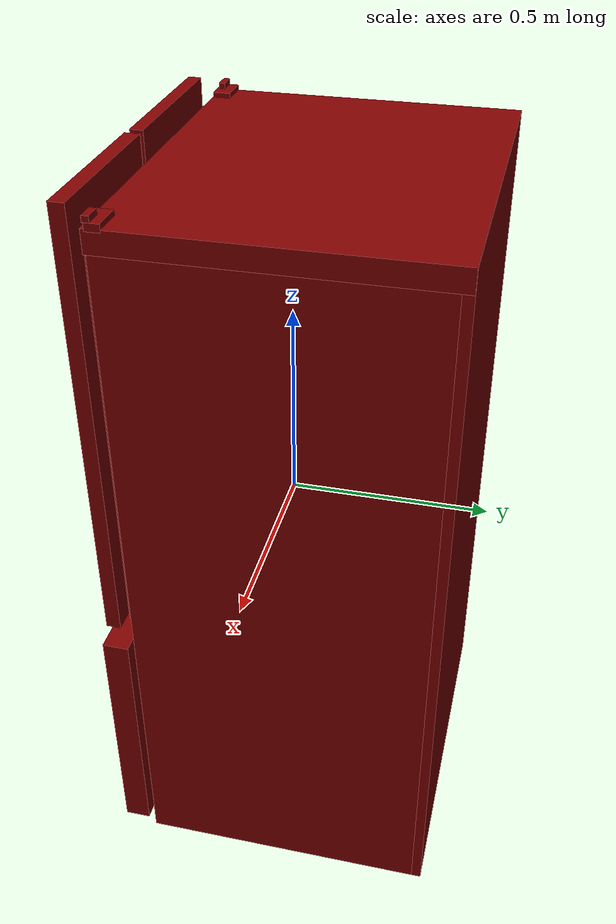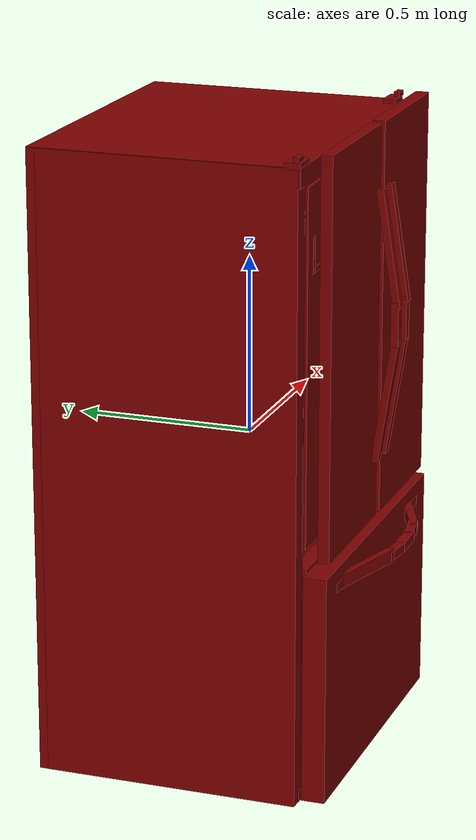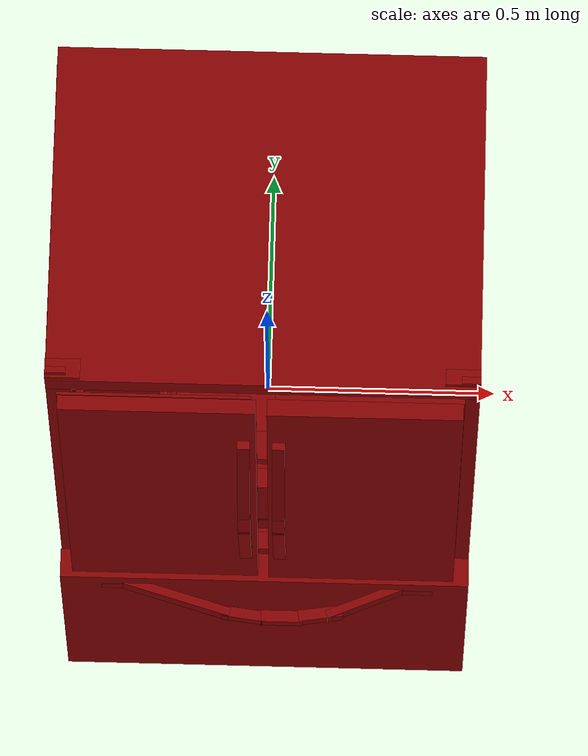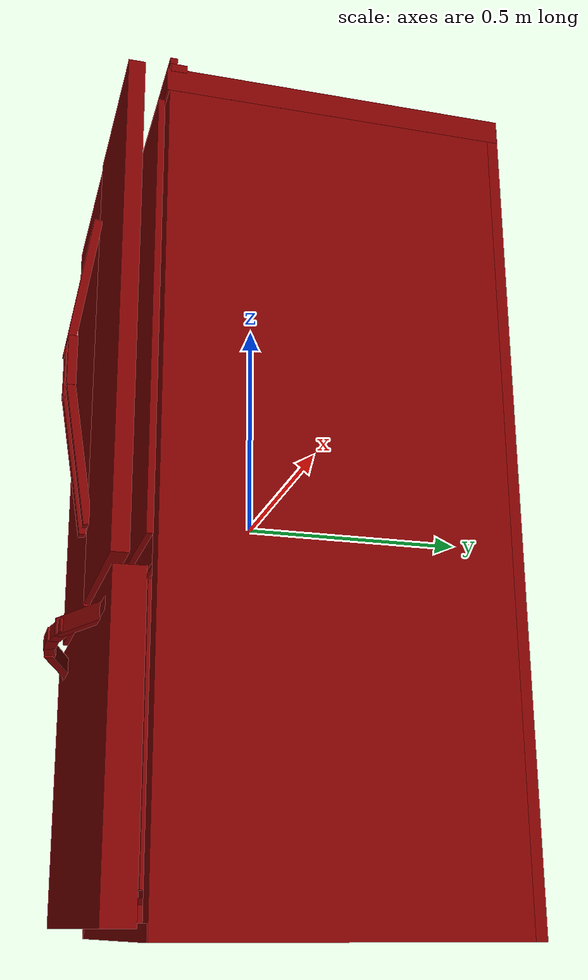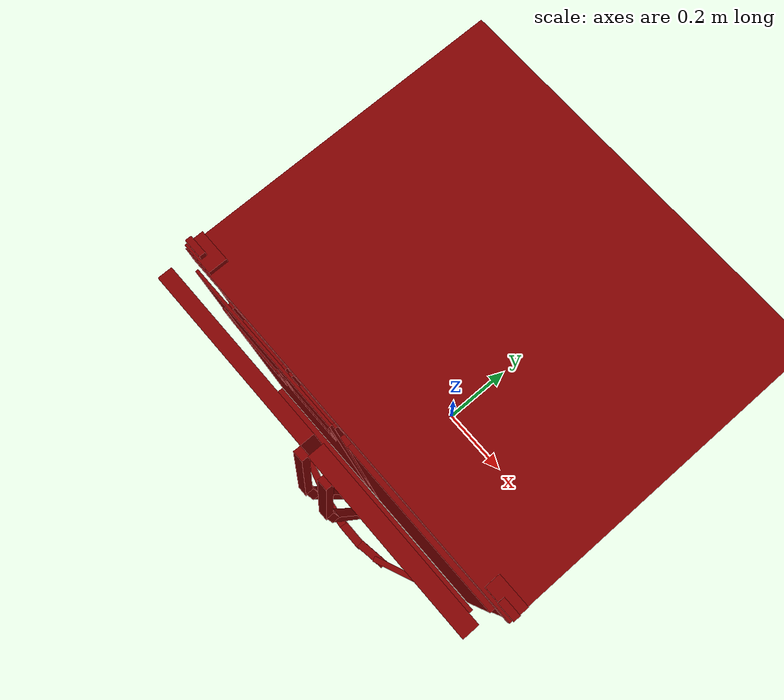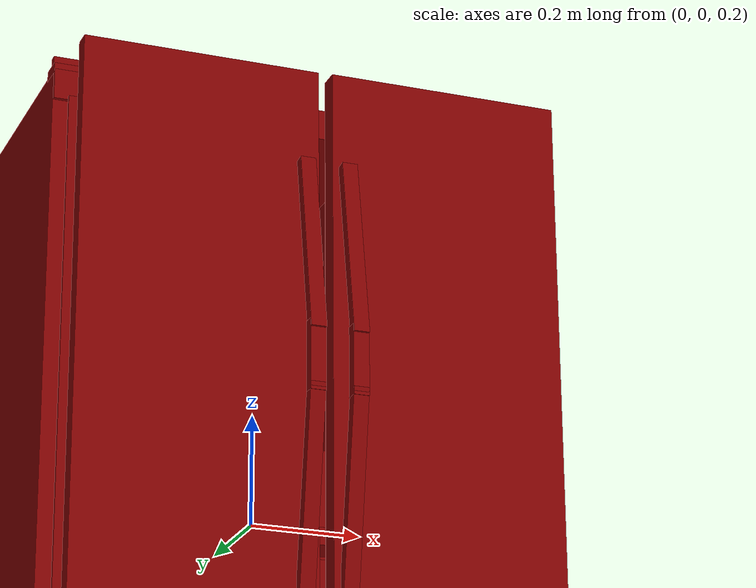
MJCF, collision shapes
<?xml version='1.0' encoding='UTF-8'?>
<mujoco model="model">
  <option timestep="0.005" gravity="0.0 0.0 -9.81"/>
  <compiler angle="radian"/>
  <asset>
    <mesh file="visuals/freezer0.obj" name="freezer0_vis"/>
    <mesh file="visuals/fridge_drawer0.obj" name="fridge_drawer0_vis"/>
    <mesh file="visuals/fridge_left_door.obj" name="fridge_left_door_vis"/>
    <mesh file="visuals/fridge_left_door_Clear.obj" name="fridge_left_door_Clear_vis"/>
    <mesh file="visuals/fridge_right_door.obj" name="fridge_right_door_vis"/>
    <mesh file="visuals/fridge_right_door_Clear.obj" name="fridge_right_door_Clear_vis"/>
    <mesh file="visuals/Body001.obj" name="Body001_vis"/>
    <mesh file="visuals/Body001_Clear.obj" name="Body001_Clear_vis"/>
    <texture file="visuals/T_BC001.png" name="Body001_material" type="2d"/>
    <material name="Body001_material" rgba="1 1 1 1.0" texture="Body001_material" shininess="0.665778249502182" specular="0.3103448502657381"/>
    <texture file="visuals/T_BC001.png" name="freezer0_material" type="2d"/>
    <material name="freezer0_material" rgba="1 1 1 1.0" texture="freezer0_material" shininess="0.665778249502182" specular="0.61"/>
    <texture file="visuals/T_BC001.png" name="fridge_drawer0_material" type="2d"/>
    <material name="fridge_drawer0_material" rgba="1 1 1 1.0" texture="fridge_drawer0_material" shininess="0.665778249502182" specular="0.3103448502657381"/>
    <texture file="visuals/T_BC001.png" name="fridge_left_door_material" type="2d"/>
    <material name="fridge_left_door_material" rgba="1 1 1 1.0" texture="fridge_left_door_material" shininess="0.665778249502182" specular="0.61"/>
    <texture file="visuals/T_BC001.png" name="fridge_left_door_Clear_material" type="2d"/>
    <material name="fridge_left_door_Clear_material" rgba="1 1 1 0.699999988079071" texture="fridge_left_door_Clear_material" shininess="0.2512328028678894" specular="0.3103448502657381"/>
    <texture file="visuals/T_BC001.png" name="fridge_right_door_material" type="2d"/>
    <material name="fridge_right_door_material" rgba="1 1 1 1.0" texture="fridge_right_door_material" shininess="0.665778249502182" specular="0.61"/>
    <texture file="visuals/T_BC001.png" name="fridge_right_door_Clear_material" type="2d"/>
    <material name="fridge_right_door_Clear_material" rgba="1 1 1 0.699999988079071" texture="fridge_right_door_Clear_material" shininess="0.2512328028678894" specular="0.3103448502657381"/>
    <texture file="visuals/T_BC001.png" name="Body001_Clear_material" type="2d"/>
    <material name="Body001_Clear_material" rgba="1 1 1 0.699999988079071" texture="Body001_Clear_material" shininess="0.2512328028678894" specular="0.3103448502657381"/>
  </asset>
  <default>
    <default class="visual">
      <geom conaffinity="0" contype="0" group="1" type="mesh"/>
    </default>
    <default class="collision">
      <geom group="0" rgba="0.5 0 0 0.5"/>
    </default>
    <default class="spawn">
      <geom group="0" rgba="1 1 1 0.5" contype="0" conaffinity="0"/>
      <site group="0" rgba="1 1 1 0.5"/>
    </default>
    <default class="region">
      <geom group="1" conaffinity="0" contype="0" rgba="0 1 0 0"/>
    </default>
  </default>
  <worldbody>
    <body>
      <body name="object">
        <geom mesh="Body001_vis" type="mesh" solimp="0.998 0.998 0.001" solref="0.001 1" friction="0.95 0.3 0.1" class="visual" material="Body001_material"/>
        <geom class="collision" type="box" pos="0.39397302 0.16072606 0.46881157" size="0.010351382195949554 0.16928532719612122 0.010351382195949554" quat="1.0 0.0 0.0 0.0"/>
        <geom class="collision" type="box" pos="-0.39762896 0.16072606 0.46881142" size="0.010351382195949554 0.1692841798067093 0.010351382195949554" quat="1.0 0.0 0.0 0.0"/>
        <geom class="collision" type="box" pos="0.38127807 0.03156779 -0.00229886" size="0.01822734624147415 0.2874940037727356 0.1552017778158188" quat="1.0 0.0 0.0 0.0"/>
        <geom class="collision" type="box" pos="-0.32927716 0.16072605 0.65921813" size="0.07471196353435516 0.16921715438365936 0.14438222348690033" quat="1.0 0.0 0.0 0.0"/>
        <geom class="collision" type="box" pos="-0.41882759 -0.27336265 0.86517310" size="0.03676821291446686 0.021106690168380737 0.009076273068785667" quat="1.0 0.0 0.0 0.0"/>
        <geom class="collision" type="box" pos="-0.43363792 -0.28183968 0.88106614" size="0.02151392586529255 0.006981874816119671 0.007224912289530039" quat="1.0 0.0 0.0 0.0"/>
        <geom class="collision" type="box" pos="0.41849810 -0.27167503 0.86517322" size="0.03709724172949791 0.017115572467446327 0.009076273068785667" quat="1.0 0.0 0.0 0.0"/>
        <geom class="collision" type="box" pos="0.43519518 -0.28326766 0.88106626" size="0.02039444074034691 0.007853726856410503 0.007224912289530039" quat="1.0 0.0 0.0 0.0"/>
        <geom class="collision" type="box" pos="-0.00171872 0.17113069 0.15645055" size="0.3947523236274719 0.17153818905353546 0.009492682293057442" quat="1.0 0.0 0.0 0.0"/>
        <geom class="collision" type="box" pos="0.01248583 0.06873922 -0.87896109" size="0.43579548597335815 0.36065641045570374 0.016081569716334343" quat="1.0 0.0 0.0 0.0"/>
        <geom class="collision" type="box" pos="0.00020603 0.07820539 0.83516902" size="0.4552483856678009 0.3750923275947571 0.026853106915950775" quat="1.0 0.0 0.0 0.0"/>
        <geom class="collision" type="box" pos="0.01248571 0.09118400 -0.19845474" size="0.43579548597335815 0.33821165561676025 0.04111609607934952" quat="1.0 0.0 0.0 0.0"/>
        <geom class="collision" type="box" pos="0.00014961 0.40447699 -0.01795267" size="0.4552538990974426 0.04916054382920265 0.8770899772644043" quat="1.0 0.0 0.0 0.0"/>
        <geom class="collision" type="box" pos="0.42626348 0.06924897 -0.01730360" size="0.029170408844947815 0.36014673113822937 0.8777389526367188" quat="1.0 0.0 0.0 0.0"/>
        <geom class="collision" type="box" pos="-0.42848656 0.06976548 -0.01730360" size="0.02709752880036831 0.35963016748428345 0.8777389526367188" quat="1.0 0.0 0.0 0.0"/>
        <geom class="collision" type="box" pos="-0.38581255 0.03156779 -0.00229886" size="0.01822734624147415 0.2875351309776306 0.1552017778158188" quat="1.0 0.0 0.0 0.0"/>
        <geom class="collision" type="box" pos="-0.00171872 0.14764889 0.48162958" size="0.3946937918663025 0.1949903815984726 0.0071469820104539394" quat="1.0 0.0 0.0 0.0"/>
        <body name="freezer0">
          <geom class="region" name="reg_freezer0" type="box" pos="0.0012735000000000107 0.04146426 -0.582328545" size="0.35728024999999997 0.29259588000000003 0.18970283500000001"/>
          <joint axis="0.0 -1.0 0.0" pos="0.00098822 -0.04495663 -0.54413748" limited="true" name="freezer0_door_joint" range="0.0 0.45" type="slide" damping="1" frictionloss="1" armature=".01" stiffness="0.05"/>
          <geom mesh="freezer0_vis" type="mesh" solimp="0.998 0.998 0.001" solref="0.001 1" friction="0.95 0.3 0.1" class="visual" material="freezer0_material"/>
          <geom class="collision" type="box" pos="-0.00152596 -0.27617277 -0.52103841" size="0.3885945677757263 0.019926954060792923 0.2845868766307831" quat="1.0 0.0 0.0 0.0"/>
          <geom class="collision" type="box" pos="0.00325092 0.34537049 -0.58550793" size="0.3782234489917755 0.0067798602394759655 0.1958441287279129" quat="1.0 0.0 0.0 0.0"/>
          <geom class="collision" type="box" pos="-0.36945698 0.02914997 -0.58227831" size="0.008334453217685223 0.3121313154697418 0.19447891414165497" quat="1.0 0.0 0.0 0.0"/>
          <geom class="collision" type="box" pos="0.37346104 0.02914997 -0.58334523" size="0.010277319699525833 0.31212928891181946 0.19342784583568573" quat="1.0 0.0 0.0 0.0"/>
          <geom class="collision" type="box" pos="0.00349362 -0.05604911 -0.79784882" size="0.37747225165367126 0.22831645607948303 0.02040756121277809" quat="1.0 0.0 0.0 0.0"/>
          <geom class="collision" type="box" pos="-0.04654500 -0.43680615 -0.28673491" size="0.04609515517950058 0.011889252811670303 0.013330944813787937" quat="0.9980104565620422 0.0 0.0 -0.0630485862493515" name="freezer0_door_handle_3"/>
          <geom class="collision" type="box" pos="0.23408982 -0.39697216 -0.28523165" size="0.10117261111736298 0.009400229901075363 0.018201885744929314" quat="0.9800581336021423 0.0 0.0 0.19871099293231964" name="freezer0_door_handle_5"/>
          <geom class="collision" type="box" pos="-0.20637545 -0.39748515 -0.28525394" size="0.13687340915203094 0.009747722186148167 0.018304292112588882" quat="0.9899300932884216 0.0 0.0 -0.1415572613477707" name="freezer0_door_handle_2"/>
          <geom class="collision" type="box" pos="0.00018750 -0.34199456 -0.55151129" size="0.45522984862327576 0.03260793909430504 0.32037287950515747" quat="1.0 0.0 0.0 0.0" name="freezer0_door_main"/>
          <geom class="collision" type="box" pos="0.04115998 -0.44110859 -0.28673491" size="0.04640457034111023 0.013151935301721096 0.013330944813787937" quat="1.0 0.0 0.0 0.0" name="freezer0_door_handle_main"/>
          <geom class="collision" type="box" pos="0.12665859 -0.43228305 -0.28673497" size="0.04938306659460068 0.012737303972244263 0.014281831681728363" quat="0.9971693754196167 0.0 0.0 0.07518839091062546" name="freezer0_door_handle_4"/>
          <geom class="collision" type="box" pos="0.32920635 -0.36250404 -0.28635326" size="0.046404555439949036 0.013151935301721096 0.013330944813787937" quat="1.0 0.0 0.0 0.0" name="freezer0_door_handle_6"/>
          <geom class="collision" type="box" pos="-0.31788349 -0.36250404 -0.28635326" size="0.04640458524227142 0.013151935301721096 0.013330944813787937" quat="1.0 0.0 0.0 0.0" name="freezer0_door_handle_1"/>
          <geom class="collision" type="box" pos="0.00425918 0.25823260 -0.78994113" size="0.3782905042171478 0.08598796278238297 0.01249912939965725" quat="1.0 0.0 0.0 0.0"/>
        </body>
        <body name="fridge_drawer0">
          <geom class="region" name="reg_fridge_drawer0" type="box" pos="-0.0014945700000000006 0.08286324499999999 -0.002895035000000004" size="0.31979841 0.225082155 0.13899294499999998"/>
          <joint axis="0.0 -1.0 0.0" pos="-0.00280036 0.04502129 -0.00803459" limited="true" name="fridge_drawer0_joint" range="0.0 0.45" type="slide" damping="1" frictionloss="1" armature=".01" stiffness="0.05"/>
          <geom mesh="fridge_drawer0_vis" type="mesh" solimp="0.998 0.998 0.001" solref="0.001 1" friction="0.95 0.3 0.1" class="visual" material="fridge_drawer0_material"/>
          <geom class="collision" type="box" pos="0.34030175 0.02856494 -0.00649109" size="0.017178663983941078 0.284542053937912 0.14763662219047546" quat="1.0 0.0 0.0 0.0"/>
          <geom class="collision" type="box" pos="-0.34390736 0.02856494 -0.00649652" size="0.017178663983941078 0.284542053937912 0.14764203131198883" quat="1.0 0.0 0.0 0.0"/>
          <geom class="collision" type="box" pos="-0.00268622 0.02856494 -0.15067451" size="0.3272773325443268 0.28454896807670593 0.0037048240192234516" quat="1.0 0.0 0.0 0.0"/>
          <geom class="collision" type="box" pos="-0.00268622 -0.23366980 -0.03811964" size="0.32728663086891174 0.022307263687253 0.1096319928765297" quat="1.0 0.0 0.0 0.0"/>
          <geom class="collision" type="box" pos="-0.00173840 0.32320004 -0.00815234" size="0.35775256156921387 0.010801659896969795 0.14659284055233002" quat="1.0 0.0 0.0 0.0"/>
          <geom class="collision" type="box" pos="-0.00305661 -0.18124206 0.12524165" size="0.33030828833580017 0.03307193145155907 0.015293127857148647" quat="1.0 0.0 0.0 0.0"/>
        </body>
        <body name="fridge_left_door">
          <joint axis="0.0 0.0 -1.0" pos="-0.41424084 -0.33445589 0.34853351" limited="true" name="fridge_left_door_joint" range="0.0 1.5707963267948966" type="hinge" damping="1" frictionloss="1" armature=".01" stiffness="0.05"/>
          <geom mesh="fridge_left_door_vis" type="mesh" solimp="0.998 0.998 0.001" solref="0.001 1" friction="0.95 0.3 0.1" class="visual" material="fridge_left_door_material"/>
          <geom class="collision" type="box" pos="-0.03887722 -0.40334327 0.14093120" size="0.17270001769065857 0.009615455754101276 0.013239248655736446" quat="0.7050025463104248 0.05450979247689247 -0.7050026655197144 -0.05450979247689247" name="fridge_left_door_handle_2"/>
          <geom class="collision" type="box" pos="-0.03885720 -0.40703438 0.56338400" size="0.1621246635913849 0.009660408832132816 0.013486583717167377" quat="0.7049456238746643 -0.05524139851331711 -0.7049456834793091 0.05524139851331711" name="fridge_left_door_handle_main"/>
          <geom class="collision" type="box" pos="-0.03874016 -0.42770506 0.35751829" size="0.013605616986751556 0.010501032695174217 0.060908108949661255" quat="1.0 0.0 0.0 0.0" name="fridge_left_door_handle_1"/>
          <geom class="collision" type="box" pos="-0.30225372 -0.22574917 0.62489849" size="0.09466478228569031 0.005250649061053991 0.04908306896686554" quat="1.0 0.0 0.0 0.0"/>
          <geom class="collision" type="box" pos="-0.12053493 -0.25491921 0.57990545" size="0.0761583149433136 0.05611921846866608 0.005094315391033888" quat="1.0 0.0 0.0 0.0"/>
          <geom class="collision" type="box" pos="-0.04961175 -0.25679106 0.62543863" size="0.005737856961786747 0.054157547652721405 0.04857568442821503" quat="1.0 0.0 0.0 0.0"/>
          <geom class="collision" type="box" pos="-0.19208086 -0.25679235 0.62526017" size="0.005292125511914492 0.05415865033864975 0.04839712753891945" quat="1.0 0.0 0.0 0.0"/>
          <geom class="collision" type="box" pos="-0.12005483 -0.19980727 0.62531990" size="0.07567781955003738 0.007097282446920872 0.04845694825053215" quat="1.0 0.0 0.0 0.0"/>
          <geom class="collision" type="box" pos="-0.30193657 -0.27201615 0.58378237" size="0.09434466063976288 0.041040558367967606 0.007711098995059729" quat="1.0 0.0 0.0 0.0"/>
          <geom class="collision" type="box" pos="-0.21370657 -0.27201615 0.62489849" size="0.006519685965031385 0.04104055464267731 0.049081530421972275" quat="1.0 0.0 0.0 0.0"/>
          <geom class="collision" type="box" pos="-0.38944969 -0.27201615 0.62489849" size="0.007707187440246344 0.04104055091738701 0.049081429839134216" quat="1.0 0.0 0.0 0.0"/>
          <geom class="collision" type="box" pos="-0.21951947 -0.35600252 0.34810767" size="0.20657332241535187 0.015840711072087288 0.5461572408676147" quat="1.0 0.0 0.0 0.0" name="fridge_left_door_main"/>
          <geom class="collision" type="box" pos="-0.22819911 -0.30621398 0.32407477" size="0.2044743299484253 0.003315950743854046 0.48597925901412964" quat="1.0 0.0 0.0 0.0"/>
          <body name="fridge_left_door_Clear">
            <geom mesh="fridge_left_door_Clear_vis" type="mesh" solimp="0.998 0.998 0.001" solref="0.001 1" friction="0.95 0.3 0.1" class="visual" material="fridge_left_door_Clear_material"/>
            <geom class="collision" type="box" pos="-0.30225372 -0.22574917 0.62489849" size="0.09466478228569031 0.005250649061053991 0.04908306896686554" quat="1.0 0.0 0.0 0.0"/>
            <geom class="collision" type="box" pos="-0.12053493 -0.25491921 0.57990545" size="0.0761583149433136 0.05611921846866608 0.005094315391033888" quat="1.0 0.0 0.0 0.0"/>
            <geom class="collision" type="box" pos="-0.04961175 -0.25679106 0.62543863" size="0.005737856961786747 0.054157547652721405 0.04857568442821503" quat="1.0 0.0 0.0 0.0"/>
            <geom class="collision" type="box" pos="-0.19208086 -0.25679235 0.62526017" size="0.005292125511914492 0.05415865033864975 0.04839712753891945" quat="1.0 0.0 0.0 0.0"/>
            <geom class="collision" type="box" pos="-0.12005483 -0.19980727 0.62531990" size="0.07567781955003738 0.007097282446920872 0.04845694825053215" quat="1.0 0.0 0.0 0.0"/>
            <geom class="collision" type="box" pos="-0.30193657 -0.27201615 0.58378237" size="0.09434466063976288 0.041040558367967606 0.007711098995059729" quat="1.0 0.0 0.0 0.0"/>
            <geom class="collision" type="box" pos="-0.21370657 -0.27201615 0.62489849" size="0.006519685965031385 0.04104055464267731 0.049081530421972275" quat="1.0 0.0 0.0 0.0"/>
            <geom class="collision" type="box" pos="-0.38944969 -0.27201615 0.62489849" size="0.007707187440246344 0.04104055091738701 0.049081429839134216" quat="1.0 0.0 0.0 0.0"/>
          </body>
        </body>
        <body name="fridge_right_door">
          <joint axis="0.0 0.0 1.0" pos="0.41503188 -0.33430220 0.34853351" limited="true" name="fridge_right_door_joint" range="0.0 1.5707963267948966" type="hinge" damping="1" frictionloss="1" armature=".01" stiffness="0.05"/>
          <geom mesh="fridge_right_door_vis" type="mesh" solimp="0.998 0.998 0.001" solref="0.001 1" friction="0.95 0.3 0.1" class="visual" material="fridge_right_door_material"/>
          <geom class="collision" type="box" pos="0.03537986 -0.42770506 0.35751829" size="0.013605616986751556 0.01050039567053318 0.060905177146196365" quat="1.0 0.0 0.0 0.0" name="fridge_right_door_handle_1"/>
          <geom class="collision" type="box" pos="0.03526283 -0.40703438 0.56338400" size="0.1621246635913849 0.009660408832132816 0.013486583717167377" quat="0.7049456238746643 -0.05524139851331711 -0.7049456834793091 0.05524139851331711" name="fridge_right_door_handle_main"/>
          <geom class="collision" type="box" pos="0.03524280 -0.40334327 0.14093120" size="0.17270001769065857 0.009615455754101276 0.013239248655736446" quat="0.7050025463104248 0.05450979247689247 -0.7050026655197144 -0.05450979247689247" name="fridge_right_door_handle_2"/>
          <geom class="collision" type="box" pos="0.21543065 -0.35624472 0.34810767" size="0.2047473043203354 0.018148282542824745 0.5462630987167358" quat="1.0 0.0 0.0 0.0" name="fridge_right_door_main"/>
          <geom class="collision" type="box" pos="0.21803437 -0.19339366 0.42362618" size="0.17543433606624603 0.0070979720912873745 0.05639644339680672" quat="1.0 0.0 0.0 0.0"/>
          <geom class="collision" type="box" pos="0.04859359 -0.25037877 0.42356634" size="0.007611525245010853 0.054163359105587006 0.05633604899048805" quat="1.0 0.0 0.0 0.0"/>
          <geom class="collision" type="box" pos="0.38563916 -0.25037749 0.42374480" size="0.00831043440848589 0.05416145175695419 0.05651396885514259" quat="1.0 0.0 0.0 0.0"/>
          <geom class="collision" type="box" pos="0.21755433 -0.24850563 0.37028417" size="0.1759112924337387 0.056122347712516785 0.005094500258564949" quat="1.0 0.0 0.0 0.0"/>
          <geom class="collision" type="box" pos="0.21484847 -0.19201360 0.65147763" size="0.17224465310573578 0.005250825081020594 0.058195117861032486" quat="1.0 0.0 0.0 0.0"/>
          <geom class="collision" type="box" pos="0.04849709 -0.25118906 0.65147763" size="0.007707793731242418 0.05395973473787308 0.05819458141922951" quat="1.0 0.0 0.0 0.0"/>
          <geom class="collision" type="box" pos="0.38095656 -0.25118906 0.65147763" size="0.006520184222608805 0.053959134966135025 0.05819404497742653" quat="1.0 0.0 0.0 0.0"/>
          <geom class="collision" type="box" pos="0.21436831 -0.25118906 0.60125917" size="0.17272159457206726 0.053958531469106674 0.007711469195783138" quat="1.0 0.0 0.0 0.0"/>
          <geom class="collision" type="box" pos="0.22494259 -0.30171586 0.32349041" size="0.19887195527553558 0.006847004406154156 0.48156583309173584" quat="1.0 0.0 0.0 0.0"/>
          <body name="fridge_right_door_Clear">
            <geom mesh="fridge_right_door_Clear_vis" type="mesh" solimp="0.998 0.998 0.001" solref="0.001 1" friction="0.95 0.3 0.1" class="visual" material="fridge_right_door_Clear_material"/>
            <geom class="collision" type="box" pos="0.21803437 -0.19339366 0.42362618" size="0.17543433606624603 0.0070979720912873745 0.05639644339680672" quat="1.0 0.0 0.0 0.0"/>
            <geom class="collision" type="box" pos="0.04859359 -0.25037877 0.42356634" size="0.007611525245010853 0.054163359105587006 0.05633604899048805" quat="1.0 0.0 0.0 0.0"/>
            <geom class="collision" type="box" pos="0.38563916 -0.25037749 0.42374480" size="0.00831043440848589 0.05416145175695419 0.05651396885514259" quat="1.0 0.0 0.0 0.0"/>
            <geom class="collision" type="box" pos="0.21755433 -0.24850563 0.37028417" size="0.1759112924337387 0.056122347712516785 0.005094500258564949" quat="1.0 0.0 0.0 0.0"/>
            <geom class="collision" type="box" pos="0.21484847 -0.19201360 0.65147763" size="0.17224465310573578 0.005250825081020594 0.058195117861032486" quat="1.0 0.0 0.0 0.0"/>
            <geom class="collision" type="box" pos="0.04849709 -0.25118906 0.65147763" size="0.007707793731242418 0.05395973473787308 0.05819458141922951" quat="1.0 0.0 0.0 0.0"/>
            <geom class="collision" type="box" pos="0.38095656 -0.25118906 0.65147763" size="0.006520184222608805 0.053959134966135025 0.05819404497742653" quat="1.0 0.0 0.0 0.0"/>
            <geom class="collision" type="box" pos="0.21436831 -0.25118906 0.60125917" size="0.17272159457206726 0.053958531469106674 0.007711469195783138" quat="1.0 0.0 0.0 0.0"/>
          </body>
        </body>
        <body name="Body001_Clear">
          <geom mesh="Body001_Clear_vis" type="mesh" solimp="0.998 0.998 0.001" solref="0.001 1" friction="0.95 0.3 0.1" class="visual" material="Body001_Clear_material"/>
          <geom class="collision" type="box" pos="-0.00171872 0.17113069 0.15645055" size="0.3947523236274719 0.17153818905353546 0.009492682293057442" quat="1.0 0.0 0.0 0.0"/>
          <geom class="collision" type="box" pos="-0.00171872 0.14764889 0.48162958" size="0.3946937918663025 0.1949903815984726 0.0071469820104539394" quat="1.0 0.0 0.0 0.0"/>
        </body>
        <geom class="region" name="reg_fridge_shelf0" type="box" pos="-0.002945659999999989 0.17489426500000002 0.31061741" size="0.39794965000000004 0.165604905 0.14529686"/>
        <geom class="region" name="reg_fridge_shelf1" type="box" pos="0.066396385 0.152628535 0.6488797550000001" size="0.319034795 0.190308015 0.15875461500000002"/>
        <geom class="region" name="reg_main" type="box" pos="-9.999999994736442e-09 0.03943350000000001 0.0" size="0.45658411 0.415204 0.89604254"/>
      </body>
    </body>
  </worldbody>
  <actuator>
    <motor name="freezer0_door_joint_actuator" joint="freezer0_door_joint" gear="50"/>
    <motor name="fridge_drawer0_joint_actuator" joint="fridge_drawer0_joint" gear="50"/>
    <motor name="fridge_left_door_joint_actuator" joint="fridge_left_door_joint" gear="50"/>
    <motor name="fridge_right_door_joint_actuator" joint="fridge_right_door_joint" gear="50"/>
  </actuator>
</mujoco>
